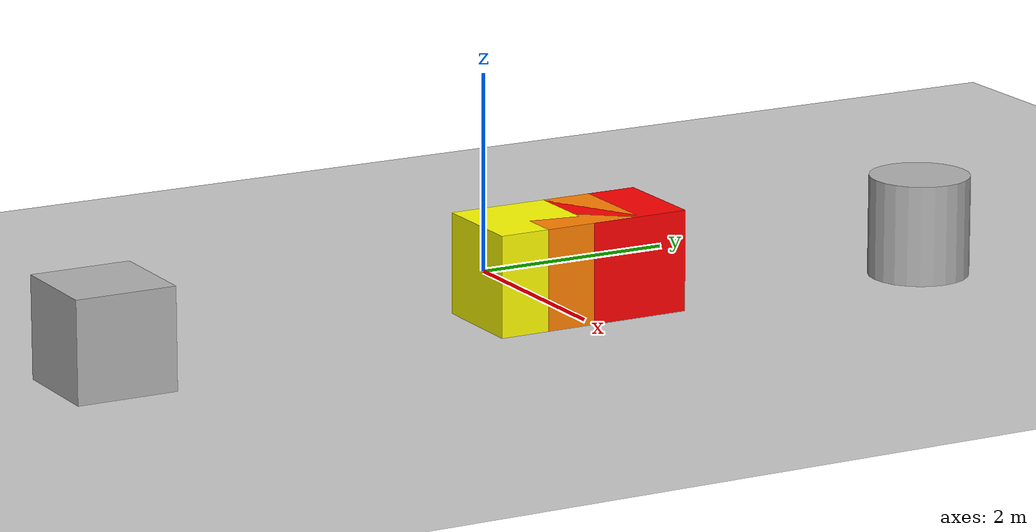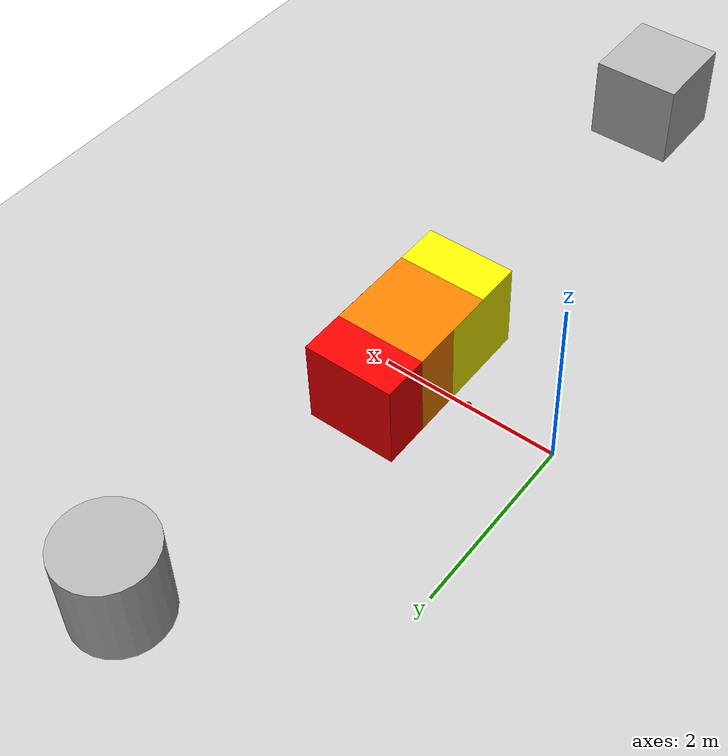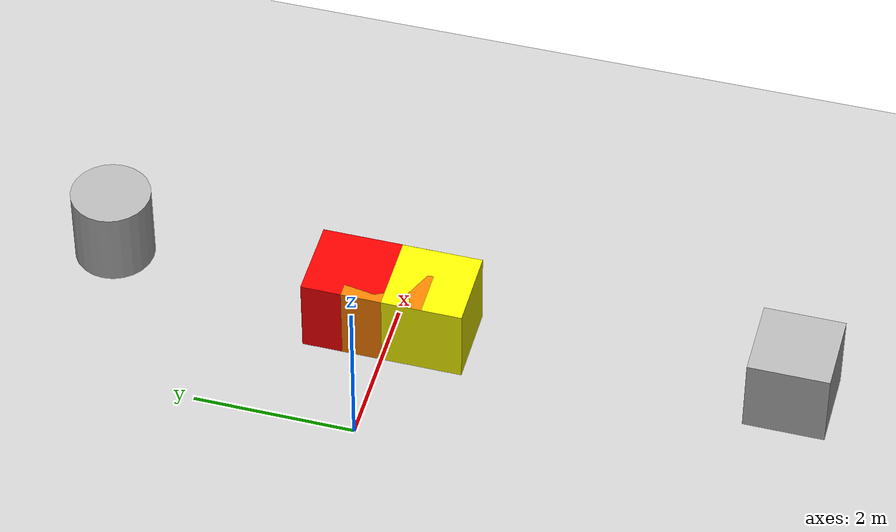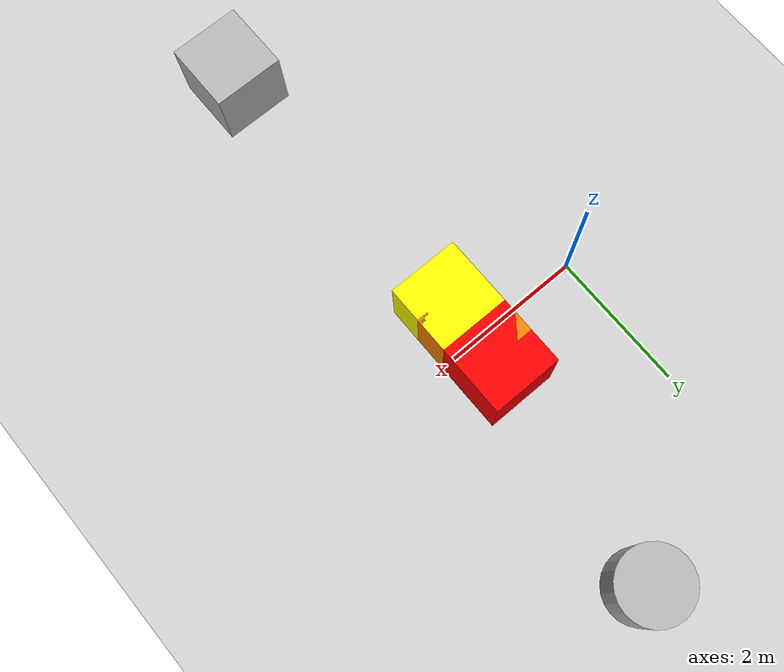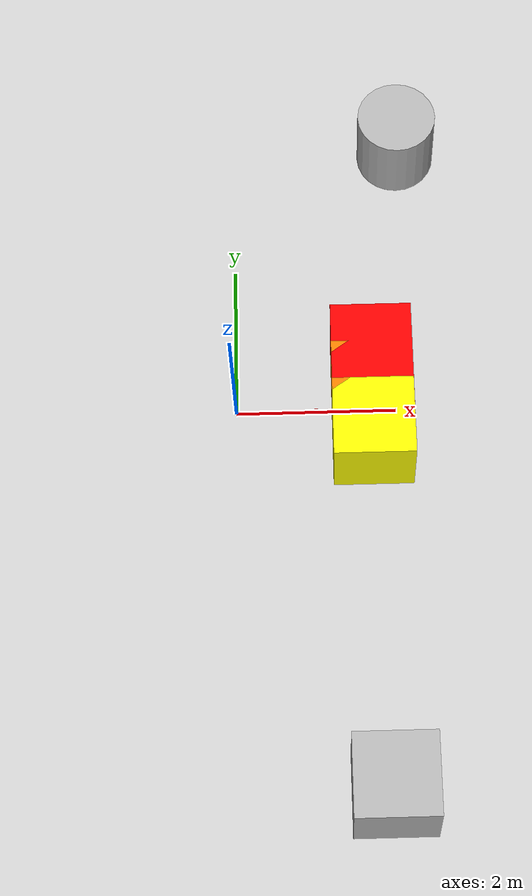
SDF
<sdf version='1.10'>
<world name='empty'>
<physics name='1ms' type='ignored'>
<max_step_size>0.001</max_step_size>
<real_time_factor>1</real_time_factor>
<real_time_update_rate>1000</real_time_update_rate>
</physics>
<plugin name='gz::sim::systems::Physics' filename='gz-sim-physics-system'/>
<plugin name='gz::sim::systems::UserCommands' filename='gz-sim-user-commands-system'/>
<plugin name='gz::sim::systems::SceneBroadcaster' filename='gz-sim-scene-broadcaster-system'/>
<plugin name='gz::sim::systems::Sensors' filename='gz-sim-sensors-system'>
<render_engine>ogre2</render_engine>
</plugin>
<plugin name='gz::sim::systems::Contact' filename='gz-sim-contact-system'/>
<gravity>0 0 -9.8000000000000007</gravity>
<magnetic_field>5.5644999999999998e-06 2.2875799999999999e-05 -4.2388400000000002e-05</magnetic_field>
<atmosphere type='adiabatic'/>
<scene>
<ambient>0.400000006 0.400000006 0.400000006 1</ambient>
<background>0.699999988 0.699999988 0.699999988 1</background>
<shadows>true</shadows>
</scene>
<model name='ground_plane'>
<static>true</static>
<link name='link'>
<collision name='collision'>
<geometry>
<plane>
<normal>0 0 1</normal>
<size>100 100</size>
</plane>
</geometry>
<surface>
<friction>
<ode/>
</friction>
<bounce/>
<contact/>
</surface>
</collision>
<visual name='visual'>
<geometry>
<plane>
<normal>0 0 1</normal>
<size>100 100</size>
</plane>
</geometry>
<material>
<ambient>0.800000012 0.800000012 0.800000012 1</ambient>
<diffuse>0.800000012 0.800000012 0.800000012 1</diffuse>
<specular>0.800000012 0.800000012 0.800000012 1</specular>
</material>
</visual>
<pose>0 0 0 0 0 0</pose>
<inertial>
<pose>0 0 0 0 0 0</pose>
<mass>1</mass>
<inertia>
<ixx>1</ixx>
<ixy>0</ixy>
<ixz>0</ixz>
<iyy>1</iyy>
<iyz>0</iyz>
<izz>1</izz>
</inertia>
</inertial>
<enable_wind>false</enable_wind>
</link>
<pose>0 0 0 0 0 0</pose>
<self_collide>false</self_collide>
</model>
<model name='box'>
<pose>1.8029219467110664 -4.9402323017846799 0.49999999990199806 6.2287739151293738e-22 9.3279666454713669e-22 -3.6315533669320137e-22</pose>
<link name='box_link'>
<inertial>
<inertia>
<ixx>0.16666</ixx>
<ixy>0</ixy>
<ixz>0</ixz>
<iyy>0.16666</iyy>
<iyz>0</iyz>
<izz>0.16666</izz>
</inertia>
<mass>1</mass>
<pose>0 0 0 0 0 0</pose>
</inertial>
<collision name='box_collision'>
<geometry>
<box>
<size>1 1 1</size>
</box>
</geometry>
<surface>
<friction>
<ode/>
</friction>
<bounce/>
<contact/>
</surface>
</collision>
<visual name='box_visual'>
<geometry>
<box>
<size>1 1 1</size>
</box>
</geometry>
<material>
<ambient>0.300000012 0.300000012 0.300000012 1</ambient>
<diffuse>0.699999988 0.699999988 0.699999988 1</diffuse>
<specular>1 1 1 1</specular>
</material>
</visual>
<pose>0 0 0 0 0 0</pose>
<enable_wind>false</enable_wind>
</link>
<static>false</static>
<self_collide>false</self_collide>
</model>
<model name='cylinder'>
<pose>2.1278173043812618 3.7029515542140965 0.49999942638036005 2.4289046005190011e-20 1.5754678275059134e-20 -9.0169543863959e-21</pose>
<link name='cylinder_link'>
<inertial>
<inertia>
<ixx>0.14580000000000001</ixx>
<ixy>0</ixy>
<ixz>0</ixz>
<iyy>0.14580000000000001</iyy>
<iyz>0</iyz>
<izz>0.125</izz>
</inertia>
<mass>1</mass>
<pose>0 0 0 0 0 0</pose>
</inertial>
<collision name='cylinder_collision'>
<geometry>
<cylinder>
<radius>0.5</radius>
<length>1</length>
</cylinder>
</geometry>
<surface>
<friction>
<ode/>
</friction>
<bounce/>
<contact/>
</surface>
</collision>
<visual name='cylinder_visual'>
<geometry>
<cylinder>
<radius>0.5</radius>
<length>1</length>
</cylinder>
</geometry>
<material>
<ambient>0.300000012 0.300000012 0.300000012 1</ambient>
<diffuse>0.699999988 0.699999988 0.699999988 1</diffuse>
<specular>1 1 1 1</specular>
</material>
</visual>
<pose>0 0 0 0 0 0</pose>
<enable_wind>false</enable_wind>
</link>
<static>false</static>
<self_collide>false</self_collide>
</model>

```
  <!-- Tennis ball model -->
 <!-- Tennis ball model (수정 버전) -->

```

<model name='tennis_ball'>
<!-- 공의 중심을 z=0.033 에 두어 바닥과 딱 맞게 접촉 -->
<pose>1 0 0.033 0 0 0</pose>
<link name='tennis_ball_link'>
<inertial>
<mass>0.058</mass>
<inertia>
<!-- 실구형 구체 공식: I = 2/5 m r^2 -->
<ixx>2.52648e-05</ixx>
<iyy>2.52648e-05</iyy>
<izz>2.52648e-05</izz>
<ixy>0</ixy><ixz>0</ixz><iyz>0</iyz>
</inertia>
<!-- 링크 pose는 모델 기준이므로 원점으로 -->
<pose>0 0 0 0 0 0</pose>
</inertial>

```
<collision name='tennis_ball_collision'>
  <geometry>
    <sphere><radius>0.033</radius></sphere>
  </geometry>
  <surface>
    <friction>
      <!-- 엔진에 따라 적절히 조정; 임시로 기본값 유지 -->
    </friction>
    <bounce>
      <!-- 잘 튀게 하고 싶다면 0.6~0.9 사이로 -->
      <restitution_coefficient>0.8</restitution_coefficient>
      <threshold>100.0</threshold>
    </bounce>
    <contact/>
  </surface>
</collision>

<visual name='tennis_ball_visual'>
  <geometry>
    <sphere><radius>0.033</radius></sphere>
  </geometry>
  <material>
    <ambient>1 0 0 1</ambient>
    <diffuse>1 0 0 1</diffuse>
    <specular>0.2 0.2 0.2 1</specular>
  </material>
</visual>

<enable_wind>false</enable_wind>

```

</link>

<static>false</static>
<self_collide>false</self_collide>
</model>

<model name='red_plane'>
<pose>1.7 0.5 0.5 0 0 0</pose>
<link name='box_link'>
<inertial>
<inertia>
<ixx>0.16666</ixx>
<ixy>0</ixy>
<ixz>0</ixz>
<iyy>0.16666</iyy>
<iyz>0</iyz>
<izz>0.16666</izz>
</inertia>
<mass>1</mass>
<pose>0 0 0 0 0 0</pose>
</inertial>
<collision name='plane1_collision'>
<geometry>
<box>
<size>1 1 1</size>
</box>
</geometry>
<surface>
<friction>
<ode/>
</friction>
<bounce/>
<contact/>
</surface>
</collision>
<visual name='red_plane_visual'>
<geometry>
<box>
<size>1 1 1</size>
</box>
</geometry>
<material>
<ambient>1 0 0 1</ambient>
<diffuse>1 0 0 1</diffuse>
<specular>1 0.5 0.5 1</specular>
</material>
</visual>
<pose>0 0 0 0 0 0</pose>
<enable_wind>false</enable_wind>
</link>
<static>false</static>
<self_collide>false</self_collide>
</model>

<model name='orange_plane'>
<pose>1.699 0 0.5 6.2287739151293738e-22 9.3279666454713669e-22 -3.6315533669320137e-22</pose>
<link name='box_link'>
<inertial>
<inertia>
<ixx>0.16666</ixx>
<ixy>0</ixy>
<ixz>0</ixz>
<iyy>0.16666</iyy>
<iyz>0</iyz>
<izz>0.16666</izz>
</inertia>
<mass>1</mass>
<pose>0 0 0 0 0 0</pose>
</inertial>
<collision name='box_collision'>
<geometry>
<box>
<size>1 1 1</size>
</box>
</geometry>
<surface>
<friction>
<ode/>
</friction>
<bounce/>
<contact/>
</surface>
</collision>
<visual name='orange_plane_visual'>
<geometry>
<box>
<size>1 1 1</size>
</box>
</geometry>
<material>
<ambient>1 0.5 0 1</ambient>
<diffuse>1 0.5 0 1</diffuse>
<specular>1 0.7 0.3 1</specular>
</material>
</visual>
<pose>0 0 0 0 0 0</pose>
<enable_wind>false</enable_wind>
</link>
<static>false</static>
<self_collide>false</self_collide>
</model>

<model name='yellow_plane'>
<pose>1.698 -0.5 0.5 6.2287739151293738e-22 9.3279666454713669e-22 -3.6315533669320137e-22</pose>
<link name='box_link'>
<inertial>
<inertia>
<ixx>0.16666</ixx>
<ixy>0</ixy>
<ixz>0</ixz>
<iyy>0.16666</iyy>
<iyz>0</iyz>
<izz>0.16666</izz>
</inertia>
<mass>1</mass>
<pose>0 0 0 0 0 0</pose>
</inertial>
<collision name='box_collision'>
<geometry>
<box>
<size>1 1 1</size>
</box>
</geometry>
<surface>
<friction>
<ode/>
</friction>
<bounce/>
<contact/>
</surface>
</collision>
<visual name='yellow_plane_visual'>
<geometry>
<box>
<size>1 1 1</size>
</box>
</geometry>
<material>
<ambient>1 1 0 1</ambient>
<diffuse>1 1 0 1</diffuse>
<specular>1 1 0.5 1</specular>
</material>
</visual>
<pose>0 0 0 0 0 0</pose>
<enable_wind>false</enable_wind>
</link>
<static>false</static>
<self_collide>false</self_collide>
</model>

```
<light name='sun' type='directional'>
  <pose>0 0 10 0 0 0</pose>
  <cast_shadows>true</cast_shadows>
  <intensity>1</intensity>
  <direction>-0.5 0.10000000000000001 -0.90000000000000002</direction>
  <diffuse>0.800000012 0.800000012 0.800000012 1</diffuse>
  <specular>0.200000003 0.200000003 0.200000003 1</specular>
  <attenuation>
    <range>1000</range>
    <linear>0.01</linear>
    <constant>0.90000000000000002</constant>
    <quadratic>0.001</quadratic>
  </attenuation>
  <spot>
    <inner_angle>0</inner_angle>
    <outer_angle>0</outer_angle>
    <falloff>0</falloff>
  </spot>
</light>

```

</world>
</sdf>
